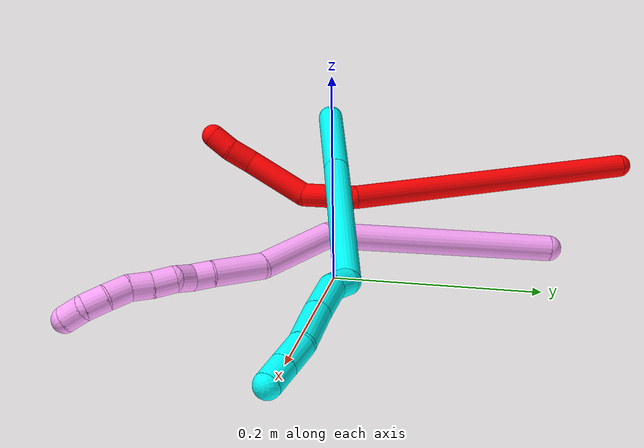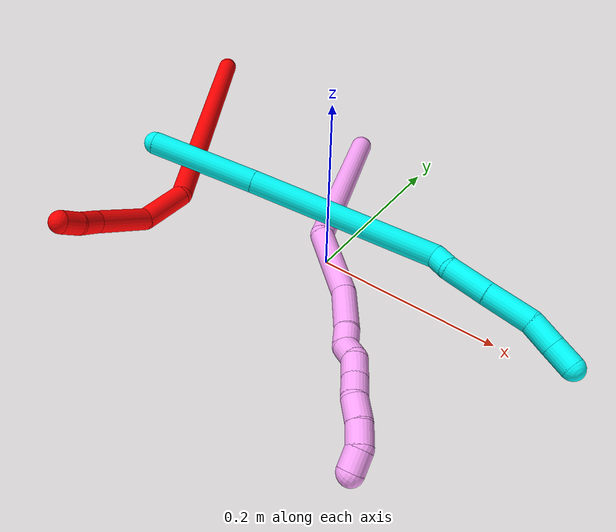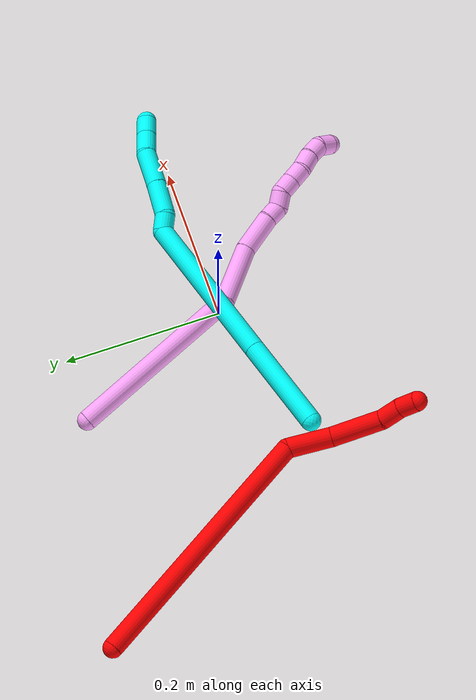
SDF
<sdf version="1.7">
 <world name="default">
  <model name="2">
   <static>0</static>
   <link name="2">
    <collision name="collision-cylinder-e_1_1_4">
     <pose>0.006347 -0.007673 -0.161293 3.09406 0.039285 1.38124</pose>
     <geometry><cylinder><radius>0.0125</radius><length>0.323201</length></cylinder></geometry>
     <surface>
      <friction><ode><mu>1.16</mu><mu2>1.16</mu2><slip1>0</slip1><slip2>0</slip2></ode></friction>
      <contact><ode><kp>1e+06</kp><kd>1</kd><max_vel>0</max_vel><min_depth>0.001</min_depth></ode></contact>
     </surface>
    </collision>
    <visual name="visual-cylinder-e_1_1_4">
     <pose>0.006347 -0.007673 -0.161293 3.09406 0.039285 1.38124</pose>
     <geometry><cylinder><radius>0.0125</radius><length>0.323201</length></cylinder></geometry>
     <material><ambient>1 0 0 1</ambient></material>
    </visual>
    <collision name="collision-cylinder-e_2_4_5">
     <pose>0.012014 -0.0326 -0.34548 2.49576 -0.023702 -0.070805</pose>
     <geometry><cylinder><radius>0.0125</radius><length>0.05735</length></cylinder></geometry>
     <surface>
      <friction><ode><mu>1.16</mu><mu2>1.16</mu2><slip1>0</slip1><slip2>0</slip2></ode></friction>
      <contact><ode><kp>1e+06</kp><kd>1</kd><max_vel>0</max_vel><min_depth>0.001</min_depth></ode></contact>
     </surface>
    </collision>
    <visual name="visual-cylinder-e_2_4_5">
     <pose>0.012014 -0.0326 -0.34548 2.49576 -0.023702 -0.070805</pose>
     <geometry><cylinder><radius>0.0125</radius><length>0.05735</length></cylinder></geometry>
     <material><ambient>1 0 0 1</ambient></material>
    </visual>
    <collision name="collision-cylinder-e_3_5_6">
     <pose>0.027006 -0.070885 -0.390516 2.38192 0.474145 1.08849</pose>
     <geometry><cylinder><radius>0.0125</radius><length>0.068649</length></cylinder></geometry>
     <surface>
      <friction><ode><mu>1.16</mu><mu2>1.16</mu2><slip1>0</slip1><slip2>0</slip2></ode></friction>
      <contact><ode><kp>1e+06</kp><kd>1</kd><max_vel>0</max_vel><min_depth>0.001</min_depth></ode></contact>
     </surface>
    </collision>
    <visual name="visual-cylinder-e_3_5_6">
     <pose>0.027006 -0.070885 -0.390516 2.38192 0.474145 1.08849</pose>
     <geometry><cylinder><radius>0.0125</radius><length>0.068649</length></cylinder></geometry>
     <material><ambient>1 0 0 1</ambient></material>
    </visual>
    <collision name="collision-cylinder-e_4_6_7">
     <pose>0.049797 -0.097453 -0.422611 2.63388 0.558624 1.67088</pose>
     <geometry><cylinder><radius>0.0125</radius><length>0.026863</length></cylinder></geometry>
     <surface>
      <friction><ode><mu>1.16</mu><mu2>1.16</mu2><slip1>0</slip1><slip2>0</slip2></ode></friction>
      <contact><ode><kp>1e+06</kp><kd>1</kd><max_vel>0</max_vel><min_depth>0.001</min_depth></ode></contact>
     </surface>
    </collision>
    <visual name="visual-cylinder-e_4_6_7">
     <pose>0.049797 -0.097453 -0.422611 2.63388 0.558624 1.67088</pose>
     <geometry><cylinder><radius>0.0125</radius><length>0.026863</length></cylinder></geometry>
     <material><ambient>1 0 0 1</ambient></material>
    </visual>
    <collision name="collision-cylinder-e_5_7_2">
     <pose>0.063749 -0.109903 -0.439547 2.36132 0.607643 1.30284</pose>
     <geometry><cylinder><radius>0.0125</radius><length>0.023936</length></cylinder></geometry>
     <surface>
      <friction><ode><mu>1.16</mu><mu2>1.16</mu2><slip1>0</slip1><slip2>0</slip2></ode></friction>
      <contact><ode><kp>1e+06</kp><kd>1</kd><max_vel>0</max_vel><min_depth>0.001</min_depth></ode></contact>
     </surface>
    </collision>
    <visual name="visual-cylinder-e_5_7_2">
     <pose>0.063749 -0.109903 -0.439547 2.36132 0.607643 1.30284</pose>
     <geometry><cylinder><radius>0.0125</radius><length>0.023936</length></cylinder></geometry>
     <material><ambient>1 0 0 1</ambient></material>
    </visual>
    <collision name="collision-sphere-2">
     <pose>0.070582 -0.116815 -0.446531 0 -0 0</pose>
     <geometry><sphere><radius>0.0125</radius></sphere></geometry>
     <surface>
      <friction><ode><mu>1.16</mu><mu2>1.16</mu2><slip1>0</slip1><slip2>0</slip2></ode></friction>
      <contact><ode><kp>1e+06</kp><kd>1</kd><max_vel>0</max_vel><min_depth>0.001</min_depth></ode></contact>
     </surface>
    </collision>
    <visual name="visual-sphere-2">
     <pose>0.070582 -0.116815 -0.446531 0 -0 0</pose>
     <geometry><sphere><radius>0.0125</radius></sphere></geometry>
     <material><ambient>1 0 0 1</ambient></material>
    </visual>
    <collision name="collision-sphere-7">
     <pose>0.056916 -0.102991 -0.432564 0 -0 0</pose>
     <geometry><sphere><radius>0.0125</radius></sphere></geometry>
     <surface>
      <friction><ode><mu>1.16</mu><mu2>1.16</mu2><slip1>0</slip1><slip2>0</slip2></ode></friction>
      <contact><ode><kp>1e+06</kp><kd>1</kd><max_vel>0</max_vel><min_depth>0.001</min_depth></ode></contact>
     </surface>
    </collision>
    <visual name="visual-sphere-7">
     <pose>0.056916 -0.102991 -0.432564 0 -0 0</pose>
     <geometry><sphere><radius>0.0125</radius></sphere></geometry>
     <material><ambient>1 0 0 1</ambient></material>
    </visual>
    <collision name="collision-sphere-6">
     <pose>0.042678 -0.091916 -0.412658 0 -0 0</pose>
     <geometry><sphere><radius>0.0125</radius></sphere></geometry>
     <surface>
      <friction><ode><mu>1.16</mu><mu2>1.16</mu2><slip1>0</slip1><slip2>0</slip2></ode></friction>
      <contact><ode><kp>1e+06</kp><kd>1</kd><max_vel>0</max_vel><min_depth>0.001</min_depth></ode></contact>
     </surface>
    </collision>
    <visual name="visual-sphere-6">
     <pose>0.042678 -0.091916 -0.412658 0 -0 0</pose>
     <geometry><sphere><radius>0.0125</radius></sphere></geometry>
     <material><ambient>1 0 0 1</ambient></material>
    </visual>
    <collision name="collision-sphere-5">
     <pose>0.011335 -0.049853 -0.368374 0 -0 0</pose>
     <geometry><sphere><radius>0.0125</radius></sphere></geometry>
     <surface>
      <friction><ode><mu>1.16</mu><mu2>1.16</mu2><slip1>0</slip1><slip2>0</slip2></ode></friction>
      <contact><ode><kp>1e+06</kp><kd>1</kd><max_vel>0</max_vel><min_depth>0.001</min_depth></ode></contact>
     </surface>
    </collision>
    <visual name="visual-sphere-5">
     <pose>0.011335 -0.049853 -0.368374 0 -0 0</pose>
     <geometry><sphere><radius>0.0125</radius></sphere></geometry>
     <material><ambient>1 0 0 1</ambient></material>
    </visual>
    <collision name="collision-sphere-1">
     <geometry><sphere><radius>0.0125</radius></sphere></geometry>
     <surface>
      <friction><ode><mu>1.16</mu><mu2>1.16</mu2><slip1>0</slip1><slip2>0</slip2></ode></friction>
      <contact><ode><kp>1e+06</kp><kd>1</kd><max_vel>0</max_vel><min_depth>0.001</min_depth></ode></contact>
     </surface>
    </collision>
    <visual name="visual-sphere-1">
     <geometry><sphere><radius>0.0125</radius></sphere></geometry>
     <material><ambient>1 0 0 1</ambient></material>
    </visual>
    <collision name="collision-sphere-4">
     <pose>0.012694 -0.015346 -0.322587 0 -0 0</pose>
     <geometry><sphere><radius>0.0125</radius></sphere></geometry>
     <surface>
      <friction><ode><mu>1.16</mu><mu2>1.16</mu2><slip1>0</slip1><slip2>0</slip2></ode></friction>
      <contact><ode><kp>1e+06</kp><kd>1</kd><max_vel>0</max_vel><min_depth>0.001</min_depth></ode></contact>
     </surface>
    </collision>
    <visual name="visual-sphere-4">
     <pose>0.012694 -0.015346 -0.322587 0 -0 0</pose>
     <geometry><sphere><radius>0.0125</radius></sphere></geometry>
     <material><ambient>1 0 0 1</ambient></material>
    </visual>
    <inertial>
     <pose>0.014916 -0.028929 -0.241252 0 -0 0</pose>
     <mass>0.5</mass>
     <inertia><ixx>0.003367</ixx><ixy>0</ixy><ixz>0</ixz><iyy>0.002249</iyy><iyz>0</iyz><izz>4e-06</izz></inertia>
    </inertial>
   </link>
   <pose>-0.366034 0.2573 0.012342 -0.79445 -1.51608 -0.186024</pose>
  </model>
  <model name="3">
   <static>0</static>
   <link name="3">
    <collision name="collision-cylinder-e_1_1_4">
     <pose>0.044223 -0.015982 -0.037353 2.73731 0.827744 2.26848</pose>
     <geometry><cylinder><radius>0.0125</radius><length>0.120105</length></cylinder></geometry>
     <surface>
      <friction><ode><mu>1.16</mu><mu2>1.16</mu2><slip1>0</slip1><slip2>0</slip2></ode></friction>
      <contact><ode><kp>1e+06</kp><kd>1</kd><max_vel>0</max_vel><min_depth>0.001</min_depth></ode></contact>
     </surface>
    </collision>
    <visual name="visual-cylinder-e_1_1_4">
     <pose>0.044223 -0.015982 -0.037353 2.73731 0.827744 2.26848</pose>
     <geometry><cylinder><radius>0.0125</radius><length>0.120105</length></cylinder></geometry>
     <material><ambient>0.003922 1 0.996078 1</ambient></material>
    </visual>
    <collision name="collision-cylinder-e_2_4_5">
     <pose>0.165485 -0.058264 -0.139452 2.75575 0.834054 2.31096</pose>
     <geometry><cylinder><radius>0.0125</radius><length>0.208028</length></cylinder></geometry>
     <surface>
      <friction><ode><mu>1.16</mu><mu2>1.16</mu2><slip1>0</slip1><slip2>0</slip2></ode></friction>
      <contact><ode><kp>1e+06</kp><kd>1</kd><max_vel>0</max_vel><min_depth>0.001</min_depth></ode></contact>
     </surface>
    </collision>
    <visual name="visual-cylinder-e_2_4_5">
     <pose>0.165485 -0.058264 -0.139452 2.75575 0.834054 2.31096</pose>
     <geometry><cylinder><radius>0.0125</radius><length>0.208028</length></cylinder></geometry>
     <material><ambient>0.003922 1 0.996078 1</ambient></material>
    </visual>
    <collision name="collision-cylinder-e_3_5_6">
     <pose>0.244281 -0.084644 -0.215166 3.13437 0.158852 3.05086</pose>
     <geometry><cylinder><radius>0.0125</radius><length>0.022214</length></cylinder></geometry>
     <surface>
      <friction><ode><mu>1.16</mu><mu2>1.16</mu2><slip1>0</slip1><slip2>0</slip2></ode></friction>
      <contact><ode><kp>1e+06</kp><kd>1</kd><max_vel>0</max_vel><min_depth>0.001</min_depth></ode></contact>
     </surface>
    </collision>
    <visual name="visual-cylinder-e_3_5_6">
     <pose>0.244281 -0.084644 -0.215166 3.13437 0.158852 3.05086</pose>
     <geometry><cylinder><radius>0.0125</radius><length>0.022214</length></cylinder></geometry>
     <material><ambient>0.003922 1 0.996078 1</ambient></material>
    </visual>
    <collision name="collision-cylinder-e_4_6_7">
     <pose>0.258361 -0.086778 -0.24501 3.03314 0.575623 2.77892</pose>
     <geometry><cylinder><radius>0.0125</radius><length>0.045273</length></cylinder></geometry>
     <surface>
      <friction><ode><mu>1.16</mu><mu2>1.16</mu2><slip1>0</slip1><slip2>0</slip2></ode></friction>
      <contact><ode><kp>1e+06</kp><kd>1</kd><max_vel>0</max_vel><min_depth>0.001</min_depth></ode></contact>
     </surface>
    </collision>
    <visual name="visual-cylinder-e_4_6_7">
     <pose>0.258361 -0.086778 -0.24501 3.03314 0.575623 2.77892</pose>
     <geometry><cylinder><radius>0.0125</radius><length>0.045273</length></cylinder></geometry>
     <material><ambient>0.003922 1 0.996078 1</ambient></material>
    </visual>
    <collision name="collision-cylinder-e_5_7_8">
     <pose>0.284825 -0.091356 -0.283926 3.01635 0.61084 2.74897</pose>
     <geometry><cylinder><radius>0.0125</radius><length>0.049312</length></cylinder></geometry>
     <surface>
      <friction><ode><mu>1.16</mu><mu2>1.16</mu2><slip1>0</slip1><slip2>0</slip2></ode></friction>
      <contact><ode><kp>1e+06</kp><kd>1</kd><max_vel>0</max_vel><min_depth>0.001</min_depth></ode></contact>
     </surface>
    </collision>
    <visual name="visual-cylinder-e_5_7_8">
     <pose>0.284825 -0.091356 -0.283926 3.01635 0.61084 2.74897</pose>
     <geometry><cylinder><radius>0.0125</radius><length>0.049312</length></cylinder></geometry>
     <material><ambient>0.003922 1 0.996078 1</ambient></material>
    </visual>
    <collision name="collision-cylinder-e_6_8_9">
     <pose>0.305962 -0.091317 -0.316791 -2.9444 0.491176 -2.38984</pose>
     <geometry><cylinder><radius>0.0125</radius><length>0.029664</length></cylinder></geometry>
     <surface>
      <friction><ode><mu>1.16</mu><mu2>1.16</mu2><slip1>0</slip1><slip2>0</slip2></ode></friction>
      <contact><ode><kp>1e+06</kp><kd>1</kd><max_vel>0</max_vel><min_depth>0.001</min_depth></ode></contact>
     </surface>
    </collision>
    <visual name="visual-cylinder-e_6_8_9">
     <pose>0.305962 -0.091317 -0.316791 -2.9444 0.491176 -2.38984</pose>
     <geometry><cylinder><radius>0.0125</radius><length>0.029664</length></cylinder></geometry>
     <material><ambient>0.003922 1 0.996078 1</ambient></material>
    </visual>
    <collision name="collision-cylinder-e_7_9_2">
     <pose>0.318902 -0.086725 -0.340656 -2.95976 0.486945 -2.4381</pose>
     <geometry><cylinder><radius>0.0125</radius><length>0.025403</length></cylinder></geometry>
     <surface>
      <friction><ode><mu>1.16</mu><mu2>1.16</mu2><slip1>0</slip1><slip2>0</slip2></ode></friction>
      <contact><ode><kp>1e+06</kp><kd>1</kd><max_vel>0</max_vel><min_depth>0.001</min_depth></ode></contact>
     </surface>
    </collision>
    <visual name="visual-cylinder-e_7_9_2">
     <pose>0.318902 -0.086725 -0.340656 -2.95976 0.486945 -2.4381</pose>
     <geometry><cylinder><radius>0.0125</radius><length>0.025403</length></cylinder></geometry>
     <material><ambient>0.003922 1 0.996078 1</ambient></material>
    </visual>
    <collision name="collision-sphere-2">
     <pose>0.324845 -0.084695 -0.351696 0 -0 0</pose>
     <geometry><sphere><radius>0.0125</radius></sphere></geometry>
     <surface>
      <friction><ode><mu>1.16</mu><mu2>1.16</mu2><slip1>0</slip1><slip2>0</slip2></ode></friction>
      <contact><ode><kp>1e+06</kp><kd>1</kd><max_vel>0</max_vel><min_depth>0.001</min_depth></ode></contact>
     </surface>
    </collision>
    <visual name="visual-sphere-2">
     <pose>0.324845 -0.084695 -0.351696 0 -0 0</pose>
     <geometry><sphere><radius>0.0125</radius></sphere></geometry>
     <material><ambient>0.003922 1 0.996078 1</ambient></material>
    </visual>
    <collision name="collision-sphere-9">
     <pose>0.312958 -0.088755 -0.329616 0 -0 0</pose>
     <geometry><sphere><radius>0.0125</radius></sphere></geometry>
     <surface>
      <friction><ode><mu>1.16</mu><mu2>1.16</mu2><slip1>0</slip1><slip2>0</slip2></ode></friction>
      <contact><ode><kp>1e+06</kp><kd>1</kd><max_vel>0</max_vel><min_depth>0.001</min_depth></ode></contact>
     </surface>
    </collision>
    <visual name="visual-sphere-9">
     <pose>0.312958 -0.088755 -0.329616 0 -0 0</pose>
     <geometry><sphere><radius>0.0125</radius></sphere></geometry>
     <material><ambient>0.003922 1 0.996078 1</ambient></material>
    </visual>
    <collision name="collision-sphere-4">
     <pose>0.088446 -0.031963 -0.074705 0 -0 0</pose>
     <geometry><sphere><radius>0.0125</radius></sphere></geometry>
     <surface>
      <friction><ode><mu>1.16</mu><mu2>1.16</mu2><slip1>0</slip1><slip2>0</slip2></ode></friction>
      <contact><ode><kp>1e+06</kp><kd>1</kd><max_vel>0</max_vel><min_depth>0.001</min_depth></ode></contact>
     </surface>
    </collision>
    <visual name="visual-sphere-4">
     <pose>0.088446 -0.031963 -0.074705 0 -0 0</pose>
     <geometry><sphere><radius>0.0125</radius></sphere></geometry>
     <material><ambient>0.003922 1 0.996078 1</ambient></material>
    </visual>
    <collision name="collision-sphere-1">
     <geometry><sphere><radius>0.0125</radius></sphere></geometry>
     <surface>
      <friction><ode><mu>1.16</mu><mu2>1.16</mu2><slip1>0</slip1><slip2>0</slip2></ode></friction>
      <contact><ode><kp>1e+06</kp><kd>1</kd><max_vel>0</max_vel><min_depth>0.001</min_depth></ode></contact>
     </surface>
    </collision>
    <visual name="visual-sphere-1">
     <geometry><sphere><radius>0.0125</radius></sphere></geometry>
     <material><ambient>0.003922 1 0.996078 1</ambient></material>
    </visual>
    <collision name="collision-sphere-8">
     <pose>0.298967 -0.093879 -0.303965 0 -0 0</pose>
     <geometry><sphere><radius>0.0125</radius></sphere></geometry>
     <surface>
      <friction><ode><mu>1.16</mu><mu2>1.16</mu2><slip1>0</slip1><slip2>0</slip2></ode></friction>
      <contact><ode><kp>1e+06</kp><kd>1</kd><max_vel>0</max_vel><min_depth>0.001</min_depth></ode></contact>
     </surface>
    </collision>
    <visual name="visual-sphere-8">
     <pose>0.298967 -0.093879 -0.303965 0 -0 0</pose>
     <geometry><sphere><radius>0.0125</radius></sphere></geometry>
     <material><ambient>0.003922 1 0.996078 1</ambient></material>
    </visual>
    <collision name="collision-sphere-5">
     <pose>0.242524 -0.084564 -0.204199 0 -0 0</pose>
     <geometry><sphere><radius>0.0125</radius></sphere></geometry>
     <surface>
      <friction><ode><mu>1.16</mu><mu2>1.16</mu2><slip1>0</slip1><slip2>0</slip2></ode></friction>
      <contact><ode><kp>1e+06</kp><kd>1</kd><max_vel>0</max_vel><min_depth>0.001</min_depth></ode></contact>
     </surface>
    </collision>
    <visual name="visual-sphere-5">
     <pose>0.242524 -0.084564 -0.204199 0 -0 0</pose>
     <geometry><sphere><radius>0.0125</radius></sphere></geometry>
     <material><ambient>0.003922 1 0.996078 1</ambient></material>
    </visual>
    <collision name="collision-sphere-6">
     <pose>0.246038 -0.084723 -0.226132 0 -0 0</pose>
     <geometry><sphere><radius>0.0125</radius></sphere></geometry>
     <surface>
      <friction><ode><mu>1.16</mu><mu2>1.16</mu2><slip1>0</slip1><slip2>0</slip2></ode></friction>
      <contact><ode><kp>1e+06</kp><kd>1</kd><max_vel>0</max_vel><min_depth>0.001</min_depth></ode></contact>
     </surface>
    </collision>
    <visual name="visual-sphere-6">
     <pose>0.246038 -0.084723 -0.226132 0 -0 0</pose>
     <geometry><sphere><radius>0.0125</radius></sphere></geometry>
     <material><ambient>0.003922 1 0.996078 1</ambient></material>
    </visual>
    <collision name="collision-sphere-7">
     <pose>0.270683 -0.088834 -0.263887 0 -0 0</pose>
     <geometry><sphere><radius>0.0125</radius></sphere></geometry>
     <surface>
      <friction><ode><mu>1.16</mu><mu2>1.16</mu2><slip1>0</slip1><slip2>0</slip2></ode></friction>
      <contact><ode><kp>1e+06</kp><kd>1</kd><max_vel>0</max_vel><min_depth>0.001</min_depth></ode></contact>
     </surface>
    </collision>
    <visual name="visual-sphere-7">
     <pose>0.270683 -0.088834 -0.263887 0 -0 0</pose>
     <geometry><sphere><radius>0.0125</radius></sphere></geometry>
     <material><ambient>0.003922 1 0.996078 1</ambient></material>
    </visual>
    <inertial>
     <pose>0.176166 -0.058532 -0.162841 0 -0 0</pose>
     <mass>0.5</mass>
     <inertia>
      <ixx>5.2e-05</ixx>
      <ixy>0</ixy>
      <ixz>0</ixz>
      <iyy>0.001228</iyy>
      <iyz>0</iyz>
      <izz>-0.000481</izz>
     </inertia>
    </inertial>
   </link>
   <pose>-0.202327 -0.045992 0.100357 -1.81202 0.703585 0.840395</pose>
  </model>
  <model name="4">
   <static>0</static>
   <link name="4">
    <collision name="collision-cylinder-e_1_1_4">
     <pose>0.063552 -0.090438 0.016387 1.39155 0.604969 0.509858</pose>
     <geometry><cylinder><radius>0.0125</radius><length>0.223485</length></cylinder></geometry>
     <surface>
      <friction><ode><mu>1.16</mu><mu2>1.16</mu2><slip1>0</slip1><slip2>0</slip2></ode></friction>
      <contact><ode><kp>1e+06</kp><kd>1</kd><max_vel>0</max_vel><min_depth>0.001</min_depth></ode></contact>
     </surface>
    </collision>
    <visual name="visual-cylinder-e_1_1_4">
     <pose>0.063552 -0.090438 0.016387 1.39155 0.604969 0.509858</pose>
     <geometry><cylinder><radius>0.0125</radius><length>0.223485</length></cylinder></geometry>
     <material><ambient>1 0.65098 0.996078 1</ambient></material>
    </visual>
    <collision name="collision-cylinder-e_2_4_5">
     <pose>0.145424 -0.20379 0.059281 0.712806 0.481752 0.182401</pose>
     <geometry><cylinder><radius>0.0125</radius><length>0.079078</length></cylinder></geometry>
     <surface>
      <friction><ode><mu>1.16</mu><mu2>1.16</mu2><slip1>0</slip1><slip2>0</slip2></ode></friction>
      <contact><ode><kp>1e+06</kp><kd>1</kd><max_vel>0</max_vel><min_depth>0.001</min_depth></ode></contact>
     </surface>
    </collision>
    <visual name="visual-cylinder-e_2_4_5">
     <pose>0.145424 -0.20379 0.059281 0.712806 0.481752 0.182401</pose>
     <geometry><cylinder><radius>0.0125</radius><length>0.079078</length></cylinder></geometry>
     <material><ambient>1 0.65098 0.996078 1</ambient></material>
    </visual>
    <collision name="collision-cylinder-e_3_5_6">
     <pose>0.176659 -0.245317 0.096315 1.05613 0.543343 0.322163</pose>
     <geometry><cylinder><radius>0.0125</radius><length>0.049963</length></cylinder></geometry>
     <surface>
      <friction><ode><mu>1.16</mu><mu2>1.16</mu2><slip1>0</slip1><slip2>0</slip2></ode></friction>
      <contact><ode><kp>1e+06</kp><kd>1</kd><max_vel>0</max_vel><min_depth>0.001</min_depth></ode></contact>
     </surface>
    </collision>
    <visual name="visual-cylinder-e_3_5_6">
     <pose>0.176659 -0.245317 0.096315 1.05613 0.543343 0.322163</pose>
     <geometry><cylinder><radius>0.0125</radius><length>0.049963</length></cylinder></geometry>
     <material><ambient>1 0.65098 0.996078 1</ambient></material>
    </visual>
    <collision name="collision-cylinder-e_4_6_7">
     <pose>0.196033 -0.270812 0.110404 1.09304 0.694843 0.433634</pose>
     <geometry><cylinder><radius>0.0125</radius><length>0.020175</length></cylinder></geometry>
     <surface>
      <friction><ode><mu>1.16</mu><mu2>1.16</mu2><slip1>0</slip1><slip2>0</slip2></ode></friction>
      <contact><ode><kp>1e+06</kp><kd>1</kd><max_vel>0</max_vel><min_depth>0.001</min_depth></ode></contact>
     </surface>
    </collision>
    <visual name="visual-cylinder-e_4_6_7">
     <pose>0.196033 -0.270812 0.110404 1.09304 0.694843 0.433634</pose>
     <geometry><cylinder><radius>0.0125</radius><length>0.020175</length></cylinder></geometry>
     <material><ambient>1 0.65098 0.996078 1</ambient></material>
    </visual>
    <collision name="collision-cylinder-e_5_7_8">
     <pose>0.203845 -0.285559 0.120029 0.914154 0.135492 0.066714</pose>
     <geometry><cylinder><radius>0.0125</radius><length>0.020046</length></cylinder></geometry>
     <surface>
      <friction><ode><mu>1.16</mu><mu2>1.16</mu2><slip1>0</slip1><slip2>0</slip2></ode></friction>
      <contact><ode><kp>1e+06</kp><kd>1</kd><max_vel>0</max_vel><min_depth>0.001</min_depth></ode></contact>
     </surface>
    </collision>
    <visual name="visual-cylinder-e_5_7_8">
     <pose>0.203845 -0.285559 0.120029 0.914154 0.135492 0.066714</pose>
     <geometry><cylinder><radius>0.0125</radius><length>0.020046</length></cylinder></geometry>
     <material><ambient>1 0.65098 0.996078 1</ambient></material>
    </visual>
    <collision name="collision-cylinder-e_6_8_9">
     <pose>0.211897 -0.300599 0.130688 1.00102 0.66622 0.374079</pose>
     <geometry><cylinder><radius>0.0125</radius><length>0.021676</length></cylinder></geometry>
     <surface>
      <friction><ode><mu>1.16</mu><mu2>1.16</mu2><slip1>0</slip1><slip2>0</slip2></ode></friction>
      <contact><ode><kp>1e+06</kp><kd>1</kd><max_vel>0</max_vel><min_depth>0.001</min_depth></ode></contact>
     </surface>
    </collision>
    <visual name="visual-cylinder-e_6_8_9">
     <pose>0.211897 -0.300599 0.130688 1.00102 0.66622 0.374079</pose>
     <geometry><cylinder><radius>0.0125</radius><length>0.021676</length></cylinder></geometry>
     <material><ambient>1 0.65098 0.996078 1</ambient></material>
    </visual>
    <collision name="collision-cylinder-e_7_9_10">
     <pose>0.224548 -0.315573 0.138992 1.12709 0.603549 0.38844</pose>
     <geometry><cylinder><radius>0.0125</radius><length>0.020976</length></cylinder></geometry>
     <surface>
      <friction><ode><mu>1.16</mu><mu2>1.16</mu2><slip1>0</slip1><slip2>0</slip2></ode></friction>
      <contact><ode><kp>1e+06</kp><kd>1</kd><max_vel>0</max_vel><min_depth>0.001</min_depth></ode></contact>
     </surface>
    </collision>
    <visual name="visual-cylinder-e_7_9_10">
     <pose>0.224548 -0.315573 0.138992 1.12709 0.603549 0.38844</pose>
     <geometry><cylinder><radius>0.0125</radius><length>0.020976</length></cylinder></geometry>
     <material><ambient>1 0.65098 0.996078 1</ambient></material>
    </visual>
    <collision name="collision-cylinder-e_8_10_11">
     <pose>0.236931 -0.329784 0.149343 0.767674 0.608277 0.252185</pose>
     <geometry><cylinder><radius>0.0125</radius><length>0.022504</length></cylinder></geometry>
     <surface>
      <friction><ode><mu>1.16</mu><mu2>1.16</mu2><slip1>0</slip1><slip2>0</slip2></ode></friction>
      <contact><ode><kp>1e+06</kp><kd>1</kd><max_vel>0</max_vel><min_depth>0.001</min_depth></ode></contact>
     </surface>
    </collision>
    <visual name="visual-cylinder-e_8_10_11">
     <pose>0.236931 -0.329784 0.149343 0.767674 0.608277 0.252185</pose>
     <geometry><cylinder><radius>0.0125</radius><length>0.022504</length></cylinder></geometry>
     <material><ambient>1 0.65098 0.996078 1</ambient></material>
    </visual>
    <collision name="collision-cylinder-e_9_11_12">
     <pose>0.251084 -0.341668 0.161266 0.803223 0.793268 0.352068</pose>
     <geometry><cylinder><radius>0.0125</radius><length>0.021675</length></cylinder></geometry>
     <surface>
      <friction><ode><mu>1.16</mu><mu2>1.16</mu2><slip1>0</slip1><slip2>0</slip2></ode></friction>
      <contact><ode><kp>1e+06</kp><kd>1</kd><max_vel>0</max_vel><min_depth>0.001</min_depth></ode></contact>
     </surface>
    </collision>
    <visual name="visual-cylinder-e_9_11_12">
     <pose>0.251084 -0.341668 0.161266 0.803223 0.793268 0.352068</pose>
     <geometry><cylinder><radius>0.0125</radius><length>0.021675</length></cylinder></geometry>
     <material><ambient>1 0.65098 0.996078 1</ambient></material>
    </visual>
    <collision name="collision-cylinder-e_10_12_2">
     <pose>0.268645 -0.349143 0.168408 0.82192 1.29945 0.639455</pose>
     <geometry><cylinder><radius>0.0125</radius><length>0.020422</length></cylinder></geometry>
     <surface>
      <friction><ode><mu>1.16</mu><mu2>1.16</mu2><slip1>0</slip1><slip2>0</slip2></ode></friction>
      <contact><ode><kp>1e+06</kp><kd>1</kd><max_vel>0</max_vel><min_depth>0.001</min_depth></ode></contact>
     </surface>
    </collision>
    <visual name="visual-cylinder-e_10_12_2">
     <pose>0.268645 -0.349143 0.168408 0.82192 1.29945 0.639455</pose>
     <geometry><cylinder><radius>0.0125</radius><length>0.020422</length></cylinder></geometry>
     <material><ambient>1 0.65098 0.996078 1</ambient></material>
    </visual>
    <collision name="collision-sphere-2">
     <pose>0.278482 -0.351148 0.170272 0 -0 0</pose>
     <geometry><sphere><radius>0.0125</radius></sphere></geometry>
     <surface>
      <friction><ode><mu>1.16</mu><mu2>1.16</mu2><slip1>0</slip1><slip2>0</slip2></ode></friction>
      <contact><ode><kp>1e+06</kp><kd>1</kd><max_vel>0</max_vel><min_depth>0.001</min_depth></ode></contact>
     </surface>
    </collision>
    <visual name="visual-sphere-2">
     <pose>0.278482 -0.351148 0.170272 0 -0 0</pose>
     <geometry><sphere><radius>0.0125</radius></sphere></geometry>
     <material><ambient>1 0.65098 0.996078 1</ambient></material>
    </visual>
    <collision name="collision-sphere-12">
     <pose>0.258808 -0.347139 0.166545 0 -0 0</pose>
     <geometry><sphere><radius>0.0125</radius></sphere></geometry>
     <surface>
      <friction><ode><mu>1.16</mu><mu2>1.16</mu2><slip1>0</slip1><slip2>0</slip2></ode></friction>
      <contact><ode><kp>1e+06</kp><kd>1</kd><max_vel>0</max_vel><min_depth>0.001</min_depth></ode></contact>
     </surface>
    </collision>
    <visual name="visual-sphere-12">
     <pose>0.258808 -0.347139 0.166545 0 -0 0</pose>
     <geometry><sphere><radius>0.0125</radius></sphere></geometry>
     <material><ambient>1 0.65098 0.996078 1</ambient></material>
    </visual>
    <collision name="collision-sphere-11">
     <pose>0.243361 -0.336197 0.155987 0 -0 0</pose>
     <geometry><sphere><radius>0.0125</radius></sphere></geometry>
     <surface>
      <friction><ode><mu>1.16</mu><mu2>1.16</mu2><slip1>0</slip1><slip2>0</slip2></ode></friction>
      <contact><ode><kp>1e+06</kp><kd>1</kd><max_vel>0</max_vel><min_depth>0.001</min_depth></ode></contact>
     </surface>
    </collision>
    <visual name="visual-sphere-11">
     <pose>0.243361 -0.336197 0.155987 0 -0 0</pose>
     <geometry><sphere><radius>0.0125</radius></sphere></geometry>
     <material><ambient>1 0.65098 0.996078 1</ambient></material>
    </visual>
    <collision name="collision-sphere-10">
     <pose>0.230501 -0.323372 0.142699 0 -0 0</pose>
     <geometry><sphere><radius>0.0125</radius></sphere></geometry>
     <surface>
      <friction><ode><mu>1.16</mu><mu2>1.16</mu2><slip1>0</slip1><slip2>0</slip2></ode></friction>
      <contact><ode><kp>1e+06</kp><kd>1</kd><max_vel>0</max_vel><min_depth>0.001</min_depth></ode></contact>
     </surface>
    </collision>
    <visual name="visual-sphere-10">
     <pose>0.230501 -0.323372 0.142699 0 -0 0</pose>
     <geometry><sphere><radius>0.0125</radius></sphere></geometry>
     <material><ambient>1 0.65098 0.996078 1</ambient></material>
    </visual>
    <collision name="collision-sphere-9">
     <pose>0.218595 -0.307774 0.135285 0 -0 0</pose>
     <geometry><sphere><radius>0.0125</radius></sphere></geometry>
     <surface>
      <friction><ode><mu>1.16</mu><mu2>1.16</mu2><slip1>0</slip1><slip2>0</slip2></ode></friction>
      <contact><ode><kp>1e+06</kp><kd>1</kd><max_vel>0</max_vel><min_depth>0.001</min_depth></ode></contact>
     </surface>
    </collision>
    <visual name="visual-sphere-9">
     <pose>0.218595 -0.307774 0.135285 0 -0 0</pose>
     <geometry><sphere><radius>0.0125</radius></sphere></geometry>
     <material><ambient>1 0.65098 0.996078 1</ambient></material>
    </visual>
    <collision name="collision-sphere-4">
     <pose>0.127104 -0.180875 0.032773 0 -0 0</pose>
     <geometry><sphere><radius>0.0125</radius></sphere></geometry>
     <surface>
      <friction><ode><mu>1.16</mu><mu2>1.16</mu2><slip1>0</slip1><slip2>0</slip2></ode></friction>
      <contact><ode><kp>1e+06</kp><kd>1</kd><max_vel>0</max_vel><min_depth>0.001</min_depth></ode></contact>
     </surface>
    </collision>
    <visual name="visual-sphere-4">
     <pose>0.127104 -0.180875 0.032773 0 -0 0</pose>
     <geometry><sphere><radius>0.0125</radius></sphere></geometry>
     <material><ambient>1 0.65098 0.996078 1</ambient></material>
    </visual>
    <collision name="collision-sphere-1">
     <geometry><sphere><radius>0.0125</radius></sphere></geometry>
     <surface>
      <friction><ode><mu>1.16</mu><mu2>1.16</mu2><slip1>0</slip1><slip2>0</slip2></ode></friction>
      <contact><ode><kp>1e+06</kp><kd>1</kd><max_vel>0</max_vel><min_depth>0.001</min_depth></ode></contact>
     </surface>
    </collision>
    <visual name="visual-sphere-1">
     <geometry><sphere><radius>0.0125</radius></sphere></geometry>
     <material><ambient>1 0.65098 0.996078 1</ambient></material>
    </visual>
    <collision name="collision-sphere-8">
     <pose>0.205199 -0.293425 0.126092 0 -0 0</pose>
     <geometry><sphere><radius>0.0125</radius></sphere></geometry>
     <surface>
      <friction><ode><mu>1.16</mu><mu2>1.16</mu2><slip1>0</slip1><slip2>0</slip2></ode></friction>
      <contact><ode><kp>1e+06</kp><kd>1</kd><max_vel>0</max_vel><min_depth>0.001</min_depth></ode></contact>
     </surface>
    </collision>
    <visual name="visual-sphere-8">
     <pose>0.205199 -0.293425 0.126092 0 -0 0</pose>
     <geometry><sphere><radius>0.0125</radius></sphere></geometry>
     <material><ambient>1 0.65098 0.996078 1</ambient></material>
    </visual>
    <collision name="collision-sphere-5">
     <pose>0.163743 -0.226704 0.085789 0 -0 0</pose>
     <geometry><sphere><radius>0.0125</radius></sphere></geometry>
     <surface>
      <friction><ode><mu>1.16</mu><mu2>1.16</mu2><slip1>0</slip1><slip2>0</slip2></ode></friction>
      <contact><ode><kp>1e+06</kp><kd>1</kd><max_vel>0</max_vel><min_depth>0.001</min_depth></ode></contact>
     </surface>
    </collision>
    <visual name="visual-sphere-5">
     <pose>0.163743 -0.226704 0.085789 0 -0 0</pose>
     <geometry><sphere><radius>0.0125</radius></sphere></geometry>
     <material><ambient>1 0.65098 0.996078 1</ambient></material>
    </visual>
    <collision name="collision-sphere-6">
     <pose>0.189574 -0.263931 0.106841 0 -0 0</pose>
     <geometry><sphere><radius>0.0125</radius></sphere></geometry>
     <surface>
      <friction><ode><mu>1.16</mu><mu2>1.16</mu2><slip1>0</slip1><slip2>0</slip2></ode></friction>
      <contact><ode><kp>1e+06</kp><kd>1</kd><max_vel>0</max_vel><min_depth>0.001</min_depth></ode></contact>
     </surface>
    </collision>
    <visual name="visual-sphere-6">
     <pose>0.189574 -0.263931 0.106841 0 -0 0</pose>
     <geometry><sphere><radius>0.0125</radius></sphere></geometry>
     <material><ambient>1 0.65098 0.996078 1</ambient></material>
    </visual>
    <collision name="collision-sphere-7">
     <pose>0.202491 -0.277693 0.113967 0 -0 0</pose>
     <geometry><sphere><radius>0.0125</radius></sphere></geometry>
     <surface>
      <friction><ode><mu>1.16</mu><mu2>1.16</mu2><slip1>0</slip1><slip2>0</slip2></ode></friction>
      <contact><ode><kp>1e+06</kp><kd>1</kd><max_vel>0</max_vel><min_depth>0.001</min_depth></ode></contact>
     </surface>
    </collision>
    <visual name="visual-sphere-7">
     <pose>0.202491 -0.277693 0.113967 0 -0 0</pose>
     <geometry><sphere><radius>0.0125</radius></sphere></geometry>
     <material><ambient>1 0.65098 0.996078 1</ambient></material>
    </visual>
    <inertial>
     <pose>0.136268 -0.189728 0.067679 0 -0 0</pose>
     <mass>0.5</mass>
     <inertia>
      <ixx>0.001142</ixx>
      <ixy>0</ixy>
      <ixz>0</ixz>
      <iyy>0.000816</iyy>
      <iyz>0</iyz>
      <izz>0.000247</izz>
     </inertia>
    </inertial>
   </link>
   <pose>-0.085182 0.199055 0.012495 -2.05222 0.695906 -1.72391</pose>
  </model>
 </world>
</sdf>
